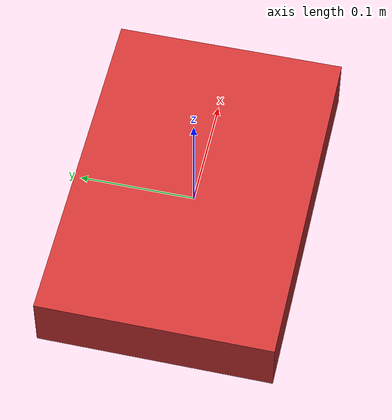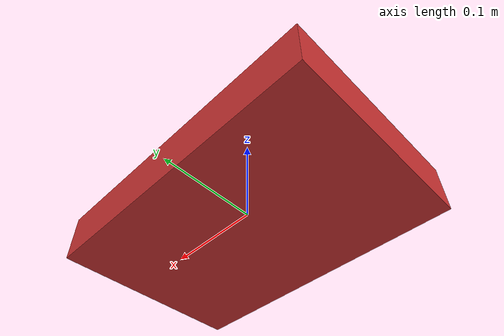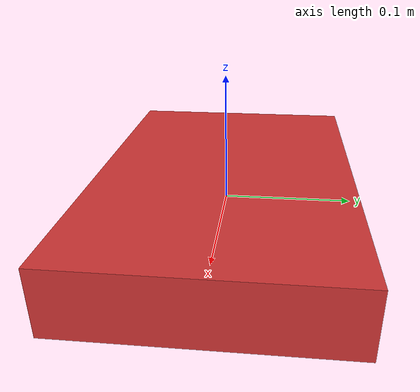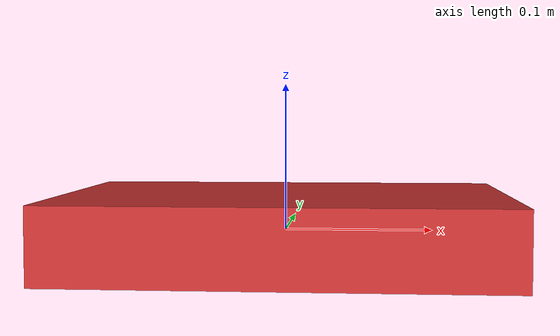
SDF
<?xml version="1.0"?>
<sdf version="1.6">
  <model name="object_book">
    <static>true</static>
    <link name="book_link">
      <visual name="book_visual">
        <geometry>
          <box>
            <size>0.3 0.2 0.05</size>
          </box>
        </geometry>
        <material>
          <ambient>0.8 0.2 0.2 1</ambient>
        </material>
      </visual>
    </link>
  </model>
</sdf>
